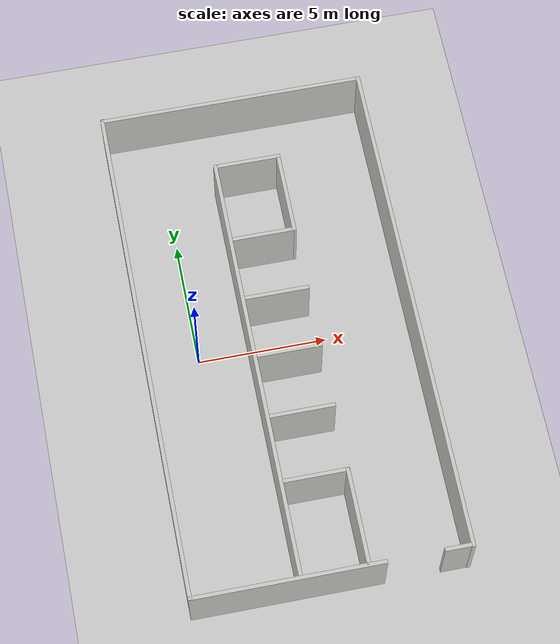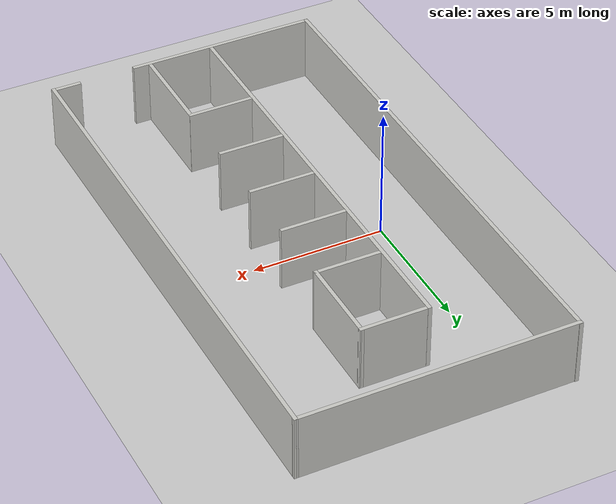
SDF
<sdf version="1.7">
 <world name="default">
  <light name="sun" type="directional">
   <pose>0 0 10 0 -0 0</pose>
   <diffuse>0.8 0.8 0.8 1</diffuse>
   <specular>0.2 0.2 0.2 1</specular>
   <attenuation>
    <range>1000</range>
    <constant>0.9</constant>
    <linear>0.01</linear>
    <quadratic>0.001</quadratic>
   </attenuation>
   <direction>-0.5 0.1 -0.9</direction>
   <spot><inner_angle>0</inner_angle><outer_angle>0</outer_angle><falloff>0</falloff></spot>
  </light>
  <model name="ground_plane">
   <static>1</static>
   <link name="link">
    <collision name="collision">
     <geometry><plane><normal>0 0 1</normal><size>100 100</size></plane></geometry>
     <surface>
      <contact><collide_bitmask>65535</collide_bitmask></contact>
      <friction><ode><mu>100</mu><mu2>50</mu2></ode></friction>
     </surface>
    </collision>
    <visual name="visual">
     <cast_shadows>0</cast_shadows>
     <geometry><plane><normal>0 0 1</normal><size>100 100</size></plane></geometry>
     <material>
      <script><uri>file://media/materials/scripts/gazebo.material</uri><name>Gazebo/Grey</name></script>
     </material>
    </visual>
   </link>
  </model>
  <gravity>0 0 -9.8</gravity>
  <magnetic_field>6e-06 2.3e-05 -4.2e-05</magnetic_field>
  <atmosphere type="adiabatic"/>
  <physics type="ode">
   <max_step_size>0.001</max_step_size>
   <real_time_factor>1</real_time_factor>
   <real_time_update_rate>1000</real_time_update_rate>
  </physics>
  <scene><ambient>0.4 0.4 0.4 1</ambient><background>0.7 0.7 0.7 1</background><shadows>1</shadows></scene>
  <audio><device>default</device></audio>
  <spherical_coordinates>
   <surface_model>EARTH_WGS84</surface_model>
   <latitude_deg>0</latitude_deg>
   <longitude_deg>0</longitude_deg>
   <elevation>0</elevation>
   <heading_deg>0</heading_deg>
  </spherical_coordinates>
  <model name="game_room">
   <pose>3.13909 -0.042829 0 0 -0 0</pose>
   <link name="Wall_14">
    <collision name="Wall_14_Collision">
     <geometry><box><size>20 0.15 2.5</size></box></geometry>
     <pose>0 0 1.25 0 -0 0</pose>
    </collision>
    <visual name="Wall_14_Visual">
     <pose>0 0 1.25 0 -0 0</pose>
     <geometry><box><size>20 0.15 2.5</size></box></geometry>
     <material>
      <script><uri>file://media/materials/scripts/gazebo.material</uri><name>Gazebo/CeilingTiled</name></script>
      <ambient>1 1 1 1</ambient>
     </material>
     <meta><layer>0</layer></meta>
    </visual>
    <pose>-5.16855 0.008499 0 0 -0 -1.5708</pose>
   </link>
   <link name="Wall_29">
    <collision name="Wall_29_Collision">
     <geometry><box><size>17 0.15 2.5</size></box></geometry>
     <pose>0 0 1.25 0 -0 0</pose>
    </collision>
    <visual name="Wall_29_Visual">
     <pose>0 0 1.25 0 -0 0</pose>
     <geometry><box><size>17 0.15 2.5</size></box></geometry>
     <material>
      <script><uri>file://media/materials/scripts/gazebo.material</uri><name>Gazebo/CeilingTiled</name></script>
      <ambient>1 1 1 1</ambient>
     </material>
     <meta><layer>0</layer></meta>
    </visual>
    <pose>-1.14655 -1.3685 0 0 -0 1.5708</pose>
   </link>
   <link name="Wall_31">
    <collision name="Wall_31_Collision">
     <geometry><box><size>2.5 0.15 2.5</size></box></geometry>
     <pose>0 0 1.25 0 -0 0</pose>
    </collision>
    <visual name="Wall_31_Visual">
     <pose>0 0 1.25 0 -0 0</pose>
     <geometry><box><size>2.5 0.15 2.5</size></box></geometry>
     <material>
      <script><uri>file://media/materials/scripts/gazebo.material</uri><name>Gazebo/CeilingTiled</name></script>
      <ambient>1 1 1 1</ambient>
     </material>
     <meta><layer>0</layer></meta>
    </visual>
    <pose>0.166446 -6.2425 0 0 -0 3.14159</pose>
   </link>
   <link name="Wall_33">
    <collision name="Wall_33_Collision">
     <geometry><box><size>2.5 0.15 2.5</size></box></geometry>
     <pose>0 0 1.25 0 -0 0</pose>
    </collision>
    <visual name="Wall_33_Visual">
     <pose>0 0 1.25 0 -0 0</pose>
     <geometry><box><size>2.5 0.15 2.5</size></box></geometry>
     <material>
      <script><uri>file://media/materials/scripts/gazebo.material</uri><name>Gazebo/CeilingTiled</name></script>
      <ambient>1 1 1 1</ambient>
     </material>
     <meta><layer>0</layer></meta>
    </visual>
    <pose>0.169446 -3.6585 0 0 -0 3.14159</pose>
   </link>
   <link name="Wall_35">
    <collision name="Wall_35_Collision">
     <geometry><box><size>2.5 0.15 2.5</size></box></geometry>
     <pose>0 0 1.25 0 -0 0</pose>
    </collision>
    <visual name="Wall_35_Visual">
     <pose>0 0 1.25 0 -0 0</pose>
     <geometry><box><size>2.5 0.15 2.5</size></box></geometry>
     <material>
      <script><uri>file://media/materials/scripts/gazebo.material</uri><name>Gazebo/CeilingTiled</name></script>
      <ambient>1 1 1 1</ambient>
     </material>
     <meta><layer>0</layer></meta>
    </visual>
    <pose>0.180446 -1.1755 0 0 -0 0</pose>
   </link>
   <link name="Wall_37">
    <collision name="Wall_37_Collision">
     <geometry><box><size>2.5 0.15 2.5</size></box></geometry>
     <pose>0 0 1.25 0 -0 0</pose>
    </collision>
    <visual name="Wall_37_Visual">
     <pose>0 0 1.25 0 -0 0</pose>
     <geometry><box><size>2.5 0.15 2.5</size></box></geometry>
     <material>
      <script><uri>file://media/materials/scripts/gazebo.material</uri><name>Gazebo/CeilingTiled</name></script>
      <ambient>1 1 1 1</ambient>
     </material>
     <meta><layer>0</layer></meta>
    </visual>
    <pose>0.171446 1.2535 0 0 -0 0</pose>
   </link>
   <link name="Wall_39">
    <collision name="Wall_39_Collision">
     <geometry><box><size>2.5 0.15 2.5</size></box></geometry>
     <pose>0 0 1.25 0 -0 0</pose>
    </collision>
    <visual name="Wall_39_Visual">
     <pose>0 0 1.25 0 -0 0</pose>
     <geometry><box><size>2.5 0.15 2.5</size></box></geometry>
     <material>
      <script><uri>file://media/materials/scripts/gazebo.material</uri><name>Gazebo/CeilingTiled</name></script>
      <ambient>1 1 1 1</ambient>
     </material>
     <meta><layer>0</layer></meta>
    </visual>
    <pose>0.174446 3.79326 0 0 -0 0.0002</pose>
   </link>
   <link name="Wall_43">
    <collision name="Wall_43_Collision">
     <geometry><box><size>3.75 0.15 2.5</size></box></geometry>
     <pose>0 0 1.25 0 -0 0</pose>
    </collision>
    <visual name="Wall_43_Visual">
     <pose>0 0 1.25 0 -0 0</pose>
     <geometry><box><size>3.75 0.15 2.5</size></box></geometry>
     <material>
      <script><uri>file://media/materials/scripts/gazebo.material</uri><name>Gazebo/CeilingTiled</name></script>
      <ambient>1 1 1 1</ambient>
     </material>
     <meta><layer>0</layer></meta>
    </visual>
    <pose>1.34145 -8.0495 0 0 -0 -1.5708</pose>
   </link>
   <link name="Wall_45">
    <collision name="Wall_45_Collision">
     <geometry><box><size>2.5 0.15 2.5</size></box></geometry>
     <pose>0 0 1.25 0 -0 0</pose>
    </collision>
    <visual name="Wall_45_Visual">
     <pose>0 0 1.25 0 -0 0</pose>
     <geometry><box><size>2.5 0.15 2.5</size></box></geometry>
     <material>
      <script><uri>file://media/materials/scripts/gazebo.material</uri><name>Gazebo/CeilingTiled</name></script>
      <ambient>1 1 1 1</ambient>
     </material>
     <meta><layer>0</layer></meta>
    </visual>
    <pose>0.179359 7.05532 0 0 -0 0.000156</pose>
   </link>
   <link name="Wall_50">
    <collision name="Wall_50_Collision">
     <geometry><box><size>10.4848 0.15 2.5</size></box></geometry>
     <pose>0 0 1.25 0 -0 0</pose>
    </collision>
    <visual name="Wall_50_Visual">
     <pose>0 0 1.25 0 -0 0</pose>
     <geometry><box><size>10.4848 0.15 2.5</size></box></geometry>
     <material>
      <script><uri>file://media/materials/scripts/gazebo.material</uri><name>Gazebo/CeilingTiled</name></script>
      <ambient>1 1 1 1</ambient>
     </material>
     <meta><layer>0</layer></meta>
    </visual>
    <pose>0.001064 9.919 0 0 -0 -3.14014</pose>
   </link>
   <link name="Wall_54">
    <collision name="Wall_54_Collision">
     <geometry><box><size>7.25 0.15 2.5</size></box></geometry>
     <pose>0 0 1.25 0 -0 0</pose>
    </collision>
    <visual name="Wall_54_Visual">
     <pose>0 0 1.25 0 -0 0</pose>
     <geometry><box><size>7.25 0.15 2.5</size></box></geometry>
     <material>
      <script><uri>file://media/materials/scripts/gazebo.material</uri><name>Gazebo/CeilingTiled</name></script>
      <ambient>1 1 1 1</ambient>
     </material>
     <meta><layer>0</layer></meta>
    </visual>
    <pose>-1.61255 -9.9335 0 0 -0 0</pose>
   </link>
   <link name="Wall_64">
    <collision name="Wall_64_Collision">
     <geometry><box><size>3.41211 0.15 2.5</size></box></geometry>
     <pose>0 0 1.25 0 -0 0</pose>
    </collision>
    <visual name="Wall_64_Visual">
     <pose>0 0 1.25 0 -0 0</pose>
     <geometry><box><size>3.41211 0.15 2.5</size></box></geometry>
     <material>
      <script><uri>file://media/materials/scripts/gazebo.material</uri><name>Gazebo/CeilingTiled</name></script>
      <ambient>1 1 1 1</ambient>
     </material>
     <meta><layer>0</layer></meta>
    </visual>
    <pose>1.35195 5.4245 0 0 -0 -1.57233</pose>
   </link>
   <link name="Wall_68">
    <collision name="Wall_68_Collision">
     <geometry><box><size>20 0.15 2.5</size></box></geometry>
     <pose>0 0 1.25 0 -0 0</pose>
    </collision>
    <visual name="Wall_68_Visual">
     <pose>0 0 1.25 0 -0 0</pose>
     <geometry><box><size>20 0.15 2.5</size></box></geometry>
     <material>
      <script><uri>file://media/materials/scripts/gazebo.material</uri><name>Gazebo/CeilingTiled</name></script>
      <ambient>1 1 1 1</ambient>
     </material>
     <meta><layer>0</layer></meta>
    </visual>
    <pose>5.16845 0.001499 0 0 -0 -1.5708</pose>
   </link>
   <link name="Wall_72">
    <collision name="Wall_72_Collision">
     <geometry><box><size>1 0.15 2.5</size></box></geometry>
     <pose>0 0 1.25 0 -0 0</pose>
    </collision>
    <visual name="Wall_72_Visual">
     <pose>0 0 1.25 0 -0 0</pose>
     <geometry><box><size>1 0.15 2.5</size></box></geometry>
     <material>
      <script><uri>file://media/materials/scripts/gazebo.material</uri><name>Gazebo/CeilingTiled</name></script>
      <ambient>1 1 1 1</ambient>
     </material>
     <meta><layer>0</layer></meta>
    </visual>
    <pose>4.61945 -9.9085 0 0 -0 0</pose>
   </link>
   <static>1</static>
  </model>
 </world>
</sdf>
